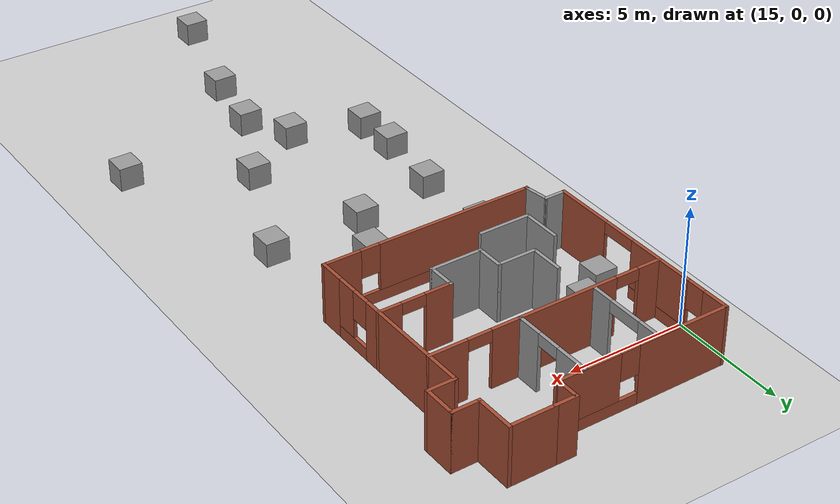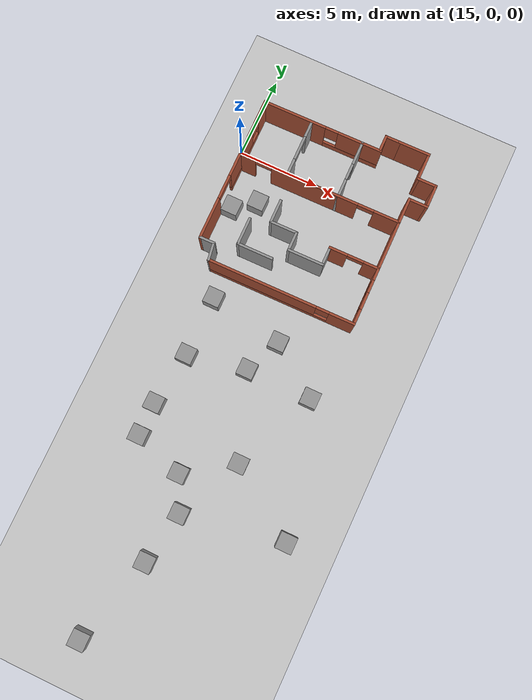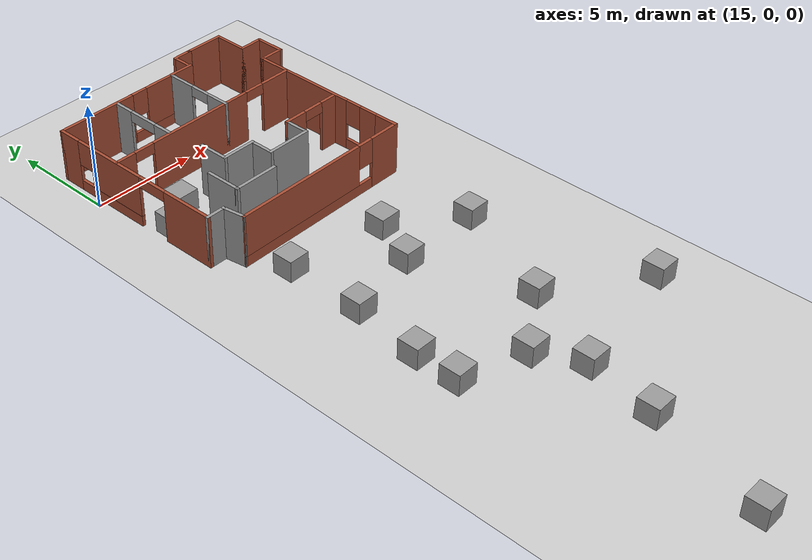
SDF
<sdf version="1.6">
 <world name="default">
  <model name="ground_plane">
   <static>1</static>
   <link name="link">
    <collision name="collision">
     <geometry><plane><normal>0 0 1</normal><size>100 100</size></plane></geometry>
     <surface><friction><ode><mu>100</mu><mu2>50</mu2></ode></friction></surface>
    </collision>
    <visual name="visual">
     <cast_shadows>0</cast_shadows>
     <geometry><plane><normal>0 0 1</normal><size>100 100</size></plane></geometry>
     <material>
      <script><uri>file://media/materials/scripts/gazebo.material</uri><name>Gazebo/Grey</name></script>
     </material>
    </visual>
   </link>
  </model>
  <model name="Multi_10home2">
   <pose>20.9623 -1.91647 0 0 0 -1.56057</pose>
   <link name="Wall_1">
    <pose>-0.030148 -5.55 0 0 -0 0</pose>
    <visual name="Wall_1_Visual_0">
     <pose>-3.9871 0 1.25 0 -0 0</pose>
     <geometry><box><size>1.1758 0.15 2.5</size></box></geometry>
     <material>
      <script><uri>file://media/materials/scripts/gazebo.material</uri><name>Gazebo/Bricks</name></script>
      <ambient>0.996078 0.47451 0.0196078 1</ambient>
     </material>
     <meta><layer>0</layer></meta>
    </visual>
    <collision name="Wall_1_Collision_0">
     <geometry><box><size>1.1758 0.15 2.5</size></box></geometry>
     <pose>-3.9871 0 1.25 0 -0 0</pose>
    </collision>
    <visual name="Wall_1_Visual_1">
     <pose>3.26904 0 1.25 0 -0 0</pose>
     <geometry><box><size>2.61193 0.15 2.5</size></box></geometry>
     <material>
      <script><uri>file://media/materials/scripts/gazebo.material</uri><name>Gazebo/Bricks</name></script>
      <ambient>0.996078 0.47451 0.0196078 1</ambient>
     </material>
     <meta><layer>0</layer></meta>
    </visual>
    <collision name="Wall_1_Collision_1">
     <geometry><box><size>2.61193 0.15 2.5</size></box></geometry>
     <pose>3.26904 0 1.25 0 -0 0</pose>
    </collision>
    <visual name="Wall_1_Visual_2">
     <pose>-1.46806 0 0.25 0 -0 0</pose>
     <geometry><box><size>3.86227 0.15 0.5</size></box></geometry>
     <material>
      <script><uri>file://media/materials/scripts/gazebo.material</uri><name>Gazebo/Bricks</name></script>
      <ambient>0.996078 0.47451 0.0196078 1</ambient>
     </material>
     <meta><layer>0</layer></meta>
    </visual>
    <collision name="Wall_1_Collision_2">
     <geometry><box><size>3.86227 0.15 0.5</size></box></geometry>
     <pose>-1.46806 0 0.25 0 -0 0</pose>
    </collision>
    <visual name="Wall_1_Visual_3">
     <pose>-1.06806 0 1.5 0 -0 0</pose>
     <geometry><box><size>3.06227 0.15 2</size></box></geometry>
     <material>
      <script><uri>file://media/materials/scripts/gazebo.material</uri><name>Gazebo/Bricks</name></script>
      <ambient>0.996078 0.47451 0.0196078 1</ambient>
     </material>
     <meta><layer>0</layer></meta>
    </visual>
    <collision name="Wall_1_Collision_3">
     <geometry><box><size>3.06227 0.15 2</size></box></geometry>
     <pose>-1.06806 0 1.5 0 -0 0</pose>
    </collision>
    <visual name="Wall_1_Visual_4">
     <pose>-2.9992 0 1.9 0 -0 0</pose>
     <geometry><box><size>0.8 0.15 1.2</size></box></geometry>
     <material>
      <script><uri>file://media/materials/scripts/gazebo.material</uri><name>Gazebo/Bricks</name></script>
      <ambient>0.996078 0.47451 0.0196078 1</ambient>
     </material>
     <meta><layer>0</layer></meta>
    </visual>
    <collision name="Wall_1_Collision_4">
     <geometry><box><size>0.8 0.15 1.2</size></box></geometry>
     <pose>-2.9992 0 1.9 0 -0 0</pose>
    </collision>
    <visual name="Wall_1_Visual_5">
     <pose>1.21307 0 2.25 0 -0 0</pose>
     <geometry><box><size>1.5 0.15 0.5</size></box></geometry>
     <material>
      <script><uri>file://media/materials/scripts/gazebo.material</uri><name>Gazebo/Bricks</name></script>
      <ambient>0.996078 0.47451 0.0196078 1</ambient>
     </material>
     <meta><layer>0</layer></meta>
    </visual>
    <collision name="Wall_1_Collision_5">
     <geometry><box><size>1.5 0.15 0.5</size></box></geometry>
     <pose>1.21307 0 2.25 0 -0 0</pose>
    </collision>
   </link>
   <link name="Wall_13">
    <collision name="Wall_13_Collision">
     <geometry><box><size>1.15 0.15 2.5</size></box></geometry>
     <pose>0 0 1.25 0 -0 0</pose>
    </collision>
    <visual name="Wall_13_Visual">
     <pose>0 0 1.25 0 -0 0</pose>
     <geometry><box><size>1.15 0.15 2.5</size></box></geometry>
     <material>
      <script><uri>file://media/materials/scripts/gazebo.material</uri><name>Gazebo/Bricks</name></script>
      <ambient>0.996078 0.47451 0.0196078 1</ambient>
     </material>
     <meta><layer>0</layer></meta>
    </visual>
    <pose>4.96985 4.45 0 0 -0 0</pose>
   </link>
   <link name="Wall_15">
    <pose>5.46985 -0.05 0 0 -0 -1.5708</pose>
    <visual name="Wall_15_Visual_0">
     <pose>-3.77551 0 1.25 0 -0 0</pose>
     <geometry><box><size>1.59899 0.15 2.5</size></box></geometry>
     <material>
      <script><uri>file://media/materials/scripts/gazebo.material</uri><name>Gazebo/Bricks</name></script>
      <ambient>0.996078 0.47451 0.0196078 1</ambient>
     </material>
     <meta><layer>0</layer></meta>
    </visual>
    <collision name="Wall_15_Collision_0">
     <geometry><box><size>1.59899 0.15 2.5</size></box></geometry>
     <pose>-3.77551 0 1.25 0 -0 0</pose>
    </collision>
    <visual name="Wall_15_Visual_1">
     <pose>0.799494 0 0.25 0 -0 0</pose>
     <geometry><box><size>7.55101 0.15 0.5</size></box></geometry>
     <material>
      <script><uri>file://media/materials/scripts/gazebo.material</uri><name>Gazebo/Bricks</name></script>
      <ambient>0.996078 0.47451 0.0196078 1</ambient>
     </material>
     <meta><layer>0</layer></meta>
    </visual>
    <collision name="Wall_15_Collision_1">
     <geometry><box><size>7.55101 0.15 0.5</size></box></geometry>
     <pose>0.799494 0 0.25 0 -0 0</pose>
    </collision>
    <visual name="Wall_15_Visual_2">
     <pose>1.19949 0 1.5 0 -0 0</pose>
     <geometry><box><size>6.75101 0.15 2</size></box></geometry>
     <material>
      <script><uri>file://media/materials/scripts/gazebo.material</uri><name>Gazebo/Bricks</name></script>
      <ambient>0.996078 0.47451 0.0196078 1</ambient>
     </material>
     <meta><layer>0</layer></meta>
    </visual>
    <collision name="Wall_15_Collision_2">
     <geometry><box><size>6.75101 0.15 2</size></box></geometry>
     <pose>1.19949 0 1.5 0 -0 0</pose>
    </collision>
    <visual name="Wall_15_Visual_3">
     <pose>-2.57601 0 1.9 0 -0 0</pose>
     <geometry><box><size>0.8 0.15 1.2</size></box></geometry>
     <material>
      <script><uri>file://media/materials/scripts/gazebo.material</uri><name>Gazebo/Bricks</name></script>
      <ambient>0.996078 0.47451 0.0196078 1</ambient>
     </material>
     <meta><layer>0</layer></meta>
    </visual>
    <collision name="Wall_15_Collision_3">
     <geometry><box><size>0.8 0.15 1.2</size></box></geometry>
     <pose>-2.57601 0 1.9 0 -0 0</pose>
    </collision>
   </link>
   <link name="Wall_17">
    <pose>-1.03015 -0.55 0 0 -0 -1.5708</pose>
    <visual name="Wall_17_Visual_0">
     <pose>-4.25111 0 1.25 0 -0 0</pose>
     <geometry><box><size>1.64778 0.15 2.5</size></box></geometry>
     <material>
      <script><uri>file://media/materials/scripts/gazebo.material</uri><name>Gazebo/Bricks</name></script>
      <ambient>1 0.764706 0.305882 1</ambient>
     </material>
     <meta><layer>0</layer></meta>
    </visual>
    <collision name="Wall_17_Collision_0">
     <geometry><box><size>1.64778 0.15 2.5</size></box></geometry>
     <pose>-4.25111 0 1.25 0 -0 0</pose>
    </collision>
    <visual name="Wall_17_Visual_1">
     <pose>0.285375 0 1.25 0 -0 0</pose>
     <geometry><box><size>5.42519 0.15 2.5</size></box></geometry>
     <material>
      <script><uri>file://media/materials/scripts/gazebo.material</uri><name>Gazebo/Bricks</name></script>
      <ambient>1 0.764706 0.305882 1</ambient>
     </material>
     <meta><layer>0</layer></meta>
    </visual>
    <collision name="Wall_17_Collision_1">
     <geometry><box><size>5.42519 0.15 2.5</size></box></geometry>
     <pose>0.285375 0 1.25 0 -0 0</pose>
    </collision>
    <visual name="Wall_17_Visual_2">
     <pose>4.53648 0 1.25 0 -0 0</pose>
     <geometry><box><size>1.07703 0.15 2.5</size></box></geometry>
     <material>
      <script><uri>file://media/materials/scripts/gazebo.material</uri><name>Gazebo/Bricks</name></script>
      <ambient>1 0.764706 0.305882 1</ambient>
     </material>
     <meta><layer>0</layer></meta>
    </visual>
    <collision name="Wall_17_Collision_2">
     <geometry><box><size>1.07703 0.15 2.5</size></box></geometry>
     <pose>4.53648 0 1.25 0 -0 0</pose>
    </collision>
    <visual name="Wall_17_Visual_3">
     <pose>-2.92722 0 2.25 0 -0 0</pose>
     <geometry><box><size>1 0.15 0.5</size></box></geometry>
     <material>
      <script><uri>file://media/materials/scripts/gazebo.material</uri><name>Gazebo/Bricks</name></script>
      <ambient>1 0.764706 0.305882 1</ambient>
     </material>
     <meta><layer>0</layer></meta>
    </visual>
    <collision name="Wall_17_Collision_3">
     <geometry><box><size>1 0.15 0.5</size></box></geometry>
     <pose>-2.92722 0 2.25 0 -0 0</pose>
    </collision>
    <visual name="Wall_17_Visual_4">
     <pose>3.49797 0 2.25 0 -0 0</pose>
     <geometry><box><size>1 0.15 0.5</size></box></geometry>
     <material>
      <script><uri>file://media/materials/scripts/gazebo.material</uri><name>Gazebo/Bricks</name></script>
      <ambient>1 0.764706 0.305882 1</ambient>
     </material>
     <meta><layer>0</layer></meta>
    </visual>
    <collision name="Wall_17_Collision_4">
     <geometry><box><size>1 0.15 0.5</size></box></geometry>
     <pose>3.49797 0 2.25 0 -0 0</pose>
    </collision>
   </link>
   <link name="Wall_21">
    <pose>1.96985 2.95 0 0 -0 -1.5708</pose>
    <visual name="Wall_21_Visual_0">
     <pose>-1.07884 0 1.25 0 -0 0</pose>
     <geometry><box><size>0.992321 0.15 2.5</size></box></geometry>
     <material>
      <script><uri>file://media/materials/scripts/gazebo.material</uri><name>Gazebo/Bricks</name></script>
      <ambient>1 0.764706 0.305882 1</ambient>
     </material>
     <meta><layer>0</layer></meta>
    </visual>
    <collision name="Wall_21_Collision_0">
     <geometry><box><size>0.992321 0.15 2.5</size></box></geometry>
     <pose>-1.07884 0 1.25 0 -0 0</pose>
    </collision>
    <visual name="Wall_21_Visual_1">
     <pose>0.99616 0 1.25 0 -0 0</pose>
     <geometry><box><size>1.15768 0.15 2.5</size></box></geometry>
     <material>
      <script><uri>file://media/materials/scripts/gazebo.material</uri><name>Gazebo/Bricks</name></script>
      <ambient>1 0.764706 0.305882 1</ambient>
     </material>
     <meta><layer>0</layer></meta>
    </visual>
    <collision name="Wall_21_Collision_1">
     <geometry><box><size>1.15768 0.15 2.5</size></box></geometry>
     <pose>0.99616 0 1.25 0 -0 0</pose>
    </collision>
    <visual name="Wall_21_Visual_2">
     <pose>-0.082679 0 2.25 0 -0 0</pose>
     <geometry><box><size>1 0.15 0.5</size></box></geometry>
     <material>
      <script><uri>file://media/materials/scripts/gazebo.material</uri><name>Gazebo/Bricks</name></script>
      <ambient>1 0.764706 0.305882 1</ambient>
     </material>
     <meta><layer>0</layer></meta>
    </visual>
    <collision name="Wall_21_Collision_2">
     <geometry><box><size>1 0.15 0.5</size></box></geometry>
     <pose>-0.082679 0 2.25 0 -0 0</pose>
    </collision>
   </link>
   <link name="Wall_23">
    <pose>-2.78015 0.65 0 0 -0 0</pose>
    <visual name="Wall_23_Visual_0">
     <pose>-1.08466 0 1.25 0 -0 0</pose>
     <geometry><box><size>1.48067 0.15 2.5</size></box></geometry>
     <material>
      <script><uri>file://media/materials/scripts/gazebo.material</uri><name>Gazebo/Grey</name></script>
      <ambient>1 1 1 1</ambient>
     </material>
     <meta><layer>0</layer></meta>
    </visual>
    <collision name="Wall_23_Collision_0">
     <geometry><box><size>1.48067 0.15 2.5</size></box></geometry>
     <pose>-1.08466 0 1.25 0 -0 0</pose>
    </collision>
    <visual name="Wall_23_Visual_1">
     <pose>1.24034 0 1.25 0 -0 0</pose>
     <geometry><box><size>1.16933 0.15 2.5</size></box></geometry>
     <material>
      <script><uri>file://media/materials/scripts/gazebo.material</uri><name>Gazebo/Grey</name></script>
      <ambient>1 1 1 1</ambient>
     </material>
     <meta><layer>0</layer></meta>
    </visual>
    <collision name="Wall_23_Collision_1">
     <geometry><box><size>1.16933 0.15 2.5</size></box></geometry>
     <pose>1.24034 0 1.25 0 -0 0</pose>
    </collision>
    <visual name="Wall_23_Visual_2">
     <pose>0.155673 0 2.25 0 -0 0</pose>
     <geometry><box><size>1 0.15 0.5</size></box></geometry>
     <material>
      <script><uri>file://media/materials/scripts/gazebo.material</uri><name>Gazebo/Grey</name></script>
      <ambient>1 1 1 1</ambient>
     </material>
     <meta><layer>0</layer></meta>
    </visual>
    <collision name="Wall_23_Collision_2">
     <geometry><box><size>1 0.15 0.5</size></box></geometry>
     <pose>0.155673 0 2.25 0 -0 0</pose>
    </collision>
   </link>
   <link name="Wall_25">
    <pose>-2.81697 -2.5468 0 0 -0 0</pose>
    <visual name="Wall_25_Visual_0">
     <pose>-1.22693 0 1.25 0 -0 0</pose>
     <geometry><box><size>1.04615 0.15 2.5</size></box></geometry>
     <material>
      <script><uri>file://media/materials/scripts/gazebo.material</uri><name>Gazebo/Grey</name></script>
      <ambient>1 1 1 1</ambient>
     </material>
     <meta><layer>0</layer></meta>
    </visual>
    <collision name="Wall_25_Collision_0">
     <geometry><box><size>1.04615 0.15 2.5</size></box></geometry>
     <pose>-1.22693 0 1.25 0 -0 0</pose>
    </collision>
    <visual name="Wall_25_Visual_1">
     <pose>1.27307 0 1.25 0 -0 0</pose>
     <geometry><box><size>0.953852 0.15 2.5</size></box></geometry>
     <material>
      <script><uri>file://media/materials/scripts/gazebo.material</uri><name>Gazebo/Grey</name></script>
      <ambient>1 1 1 1</ambient>
     </material>
     <meta><layer>0</layer></meta>
    </visual>
    <collision name="Wall_25_Collision_1">
     <geometry><box><size>0.953852 0.15 2.5</size></box></geometry>
     <pose>1.27307 0 1.25 0 -0 0</pose>
    </collision>
    <visual name="Wall_25_Visual_2">
     <pose>0.046148 0 2.25 0 -0 0</pose>
     <geometry><box><size>1.5 0.15 0.5</size></box></geometry>
     <material>
      <script><uri>file://media/materials/scripts/gazebo.material</uri><name>Gazebo/Grey</name></script>
      <ambient>1 1 1 1</ambient>
     </material>
     <meta><layer>0</layer></meta>
    </visual>
    <collision name="Wall_25_Collision_2">
     <geometry><box><size>1.5 0.15 0.5</size></box></geometry>
     <pose>0.046148 0 2.25 0 -0 0</pose>
    </collision>
   </link>
   <link name="Wall_27">
    <collision name="Wall_27_Collision">
     <geometry><box><size>1.25 0.15 2.5</size></box></geometry>
     <pose>0 0 1.25 0 -0 0</pose>
    </collision>
    <visual name="Wall_27_Visual">
     <pose>0 0 1.25 0 -0 0</pose>
     <geometry><box><size>1.25 0.15 2.5</size></box></geometry>
     <material>
      <script><uri>file://media/materials/scripts/gazebo.material</uri><name>Gazebo/Bricks</name></script>
      <ambient>0.996078 0.47451 0.0196078 1</ambient>
     </material>
     <meta><layer>0</layer></meta>
    </visual>
    <pose>-2.53015 5 0 0 -0 1.5708</pose>
   </link>
   <link name="Wall_28">
    <collision name="Wall_28_Collision">
     <geometry><box><size>1.5 0.15 2.5</size></box></geometry>
     <pose>0 0 1.25 0 -0 0</pose>
    </collision>
    <visual name="Wall_28_Visual">
     <pose>0 0 1.25 0 -0 0</pose>
     <geometry><box><size>1.5 0.15 2.5</size></box></geometry>
     <material>
      <script><uri>file://media/materials/scripts/gazebo.material</uri><name>Gazebo/Bricks</name></script>
      <ambient>0.996078 0.47451 0.0196078 1</ambient>
     </material>
     <meta><layer>0</layer></meta>
    </visual>
    <pose>-3.20515 5.55 0 0 -0 3.14159</pose>
   </link>
   <link name="Wall_29">
    <collision name="Wall_29_Collision">
     <geometry><box><size>1.25 0.15 2.5</size></box></geometry>
     <pose>0 0 1.25 0 -0 0</pose>
    </collision>
    <visual name="Wall_29_Visual">
     <pose>0 0 1.25 0 -0 0</pose>
     <geometry><box><size>1.25 0.15 2.5</size></box></geometry>
     <material>
      <script><uri>file://media/materials/scripts/gazebo.material</uri><name>Gazebo/Bricks</name></script>
      <ambient>0.996078 0.47451 0.0196078 1</ambient>
     </material>
     <meta><layer>0</layer></meta>
    </visual>
    <pose>-3.88015 5 0 0 -0 -1.5708</pose>
   </link>
   <link name="Wall_3">
    <pose>-4.53015 -1.875 0 0 -0 1.5708</pose>
    <visual name="Wall_3_Visual_0">
     <pose>-1.77393 0 1.25 0 -0 0</pose>
     <geometry><box><size>3.95214 0.15 2.5</size></box></geometry>
     <material>
      <script><uri>file://media/materials/scripts/gazebo.material</uri><name>Gazebo/Bricks</name></script>
      <ambient>0.996078 0.47451 0.0196078 1</ambient>
     </material>
     <meta><layer>0</layer></meta>
    </visual>
    <collision name="Wall_3_Collision_0">
     <geometry><box><size>3.95214 0.15 2.5</size></box></geometry>
     <pose>-1.77393 0 1.25 0 -0 0</pose>
    </collision>
    <visual name="Wall_3_Visual_1">
     <pose>1.97607 0 0.25 0 -0 0</pose>
     <geometry><box><size>3.54786 0.15 0.5</size></box></geometry>
     <material>
      <script><uri>file://media/materials/scripts/gazebo.material</uri><name>Gazebo/Bricks</name></script>
      <ambient>0.996078 0.47451 0.0196078 1</ambient>
     </material>
     <meta><layer>0</layer></meta>
    </visual>
    <collision name="Wall_3_Collision_1">
     <geometry><box><size>3.54786 0.15 0.5</size></box></geometry>
     <pose>1.97607 0 0.25 0 -0 0</pose>
    </collision>
    <visual name="Wall_3_Visual_2">
     <pose>2.37607 0 1.5 0 -0 0</pose>
     <geometry><box><size>2.74786 0.15 2</size></box></geometry>
     <material>
      <script><uri>file://media/materials/scripts/gazebo.material</uri><name>Gazebo/Bricks</name></script>
      <ambient>0.996078 0.47451 0.0196078 1</ambient>
     </material>
     <meta><layer>0</layer></meta>
    </visual>
    <collision name="Wall_3_Collision_2">
     <geometry><box><size>2.74786 0.15 2</size></box></geometry>
     <pose>2.37607 0 1.5 0 -0 0</pose>
    </collision>
    <visual name="Wall_3_Visual_3">
     <pose>0.602144 0 1.9 0 -0 0</pose>
     <geometry><box><size>0.8 0.15 1.2</size></box></geometry>
     <material>
      <script><uri>file://media/materials/scripts/gazebo.material</uri><name>Gazebo/Bricks</name></script>
      <ambient>0.996078 0.47451 0.0196078 1</ambient>
     </material>
     <meta><layer>0</layer></meta>
    </visual>
    <collision name="Wall_3_Collision_3">
     <geometry><box><size>0.8 0.15 1.2</size></box></geometry>
     <pose>0.602144 0 1.9 0 -0 0</pose>
    </collision>
   </link>
   <link name="Wall_30">
    <collision name="Wall_30_Collision">
     <geometry><box><size>1.75 0.15 2.5</size></box></geometry>
     <pose>0 0 1.25 0 -0 0</pose>
    </collision>
    <visual name="Wall_30_Visual">
     <pose>0 0 1.25 0 -0 0</pose>
     <geometry><box><size>1.75 0.15 2.5</size></box></geometry>
     <material>
      <script><uri>file://media/materials/scripts/gazebo.material</uri><name>Gazebo/Bricks</name></script>
      <ambient>0.996078 0.47451 0.0196078 1</ambient>
     </material>
     <meta><layer>0</layer></meta>
    </visual>
    <pose>-4.68015 4.45 0 0 -0 3.14159</pose>
   </link>
   <link name="Wall_31">
    <collision name="Wall_31_Collision">
     <geometry><box><size>2 0.15 2.5</size></box></geometry>
     <pose>0 0 1.25 0 -0 0</pose>
    </collision>
    <visual name="Wall_31_Visual">
     <pose>0 0 1.25 0 -0 0</pose>
     <geometry><box><size>2 0.15 2.5</size></box></geometry>
     <material>
      <script><uri>file://media/materials/scripts/gazebo.material</uri><name>Gazebo/Bricks</name></script>
      <ambient>0.996078 0.47451 0.0196078 1</ambient>
     </material>
     <meta><layer>0</layer></meta>
    </visual>
    <pose>-5.48015 3.525 0 0 -0 -1.5708</pose>
   </link>
   <link name="Wall_32">
    <collision name="Wall_32_Collision">
     <geometry><box><size>1 0.15 2.5</size></box></geometry>
     <pose>0 0 1.25 0 -0 0</pose>
    </collision>
    <visual name="Wall_32_Visual">
     <pose>0 0 1.25 0 -0 0</pose>
     <geometry><box><size>1 0.15 2.5</size></box></geometry>
     <material>
      <script><uri>file://media/materials/scripts/gazebo.material</uri><name>Gazebo/Bricks</name></script>
      <ambient>0.996078 0.47451 0.0196078 1</ambient>
     </material>
     <meta><layer>0</layer></meta>
    </visual>
    <pose>-5.48015 2.175 0 0 -0 -1.5708</pose>
   </link>
   <link name="Wall_33">
    <collision name="Wall_33_Collision">
     <geometry><box><size>1 0.15 2.5</size></box></geometry>
     <pose>0 0 1.25 0 -0 0</pose>
    </collision>
    <visual name="Wall_33_Visual">
     <pose>0 0 1.25 0 -0 0</pose>
     <geometry><box><size>1 0.15 2.5</size></box></geometry>
     <material>
      <script><uri>file://media/materials/scripts/gazebo.material</uri><name>Gazebo/Bricks</name></script>
      <ambient>0.996078 0.47451 0.0196078 1</ambient>
     </material>
     <meta><layer>0</layer></meta>
    </visual>
    <pose>-5.05515 1.75 0 0 -0 0</pose>
   </link>
   <link name="Wall_35">
    <collision name="Wall_35_Collision">
     <geometry><box><size>1.25 0.15 2.5</size></box></geometry>
     <pose>0 0 1.25 0 -0 0</pose>
    </collision>
    <visual name="Wall_35_Visual">
     <pose>0 0 1.25 0 -0 0</pose>
     <geometry><box><size>1.25 0.15 2.5</size></box></geometry>
     <material>
      <script><uri>file://media/materials/scripts/gazebo.material</uri><name>Gazebo/Grey</name></script>
      <ambient>1 1 1 1</ambient>
     </material>
     <meta><layer>0</layer></meta>
    </visual>
    <pose>2.51985 1.45 0 0 -0 0</pose>
   </link>
   <link name="Wall_36">
    <collision name="Wall_36_Collision">
     <geometry><box><size>2.25 0.15 2.5</size></box></geometry>
     <pose>0 0 1.25 0 -0 0</pose>
    </collision>
    <visual name="Wall_36_Visual">
     <pose>0 0 1.25 0 -0 0</pose>
     <geometry><box><size>2.25 0.15 2.5</size></box></geometry>
     <material>
      <script><uri>file://media/materials/scripts/gazebo.material</uri><name>Gazebo/Grey</name></script>
      <ambient>1 1 1 1</ambient>
     </material>
     <meta><layer>0</layer></meta>
    </visual>
    <pose>3.06985 0.4 0 0 -0 -1.5708</pose>
   </link>
   <link name="Wall_37">
    <collision name="Wall_37_Collision">
     <geometry><box><size>1.25 0.15 2.5</size></box></geometry>
     <pose>0 0 1.25 0 -0 0</pose>
    </collision>
    <visual name="Wall_37_Visual">
     <pose>0 0 1.25 0 -0 0</pose>
     <geometry><box><size>1.25 0.15 2.5</size></box></geometry>
     <material>
      <script><uri>file://media/materials/scripts/gazebo.material</uri><name>Gazebo/Grey</name></script>
      <ambient>1 1 1 1</ambient>
     </material>
     <meta><layer>0</layer></meta>
    </visual>
    <pose>2.51985 -0.65 0 0 -0 3.14159</pose>
   </link>
   <link name="Wall_38">
    <collision name="Wall_38_Collision">
     <geometry><box><size>1.75 0.15 2.5</size></box></geometry>
     <pose>0 0 1.25 0 -0 0</pose>
    </collision>
    <visual name="Wall_38_Visual">
     <pose>0 0 1.25 0 -0 0</pose>
     <geometry><box><size>1.75 0.15 2.5</size></box></geometry>
     <material>
      <script><uri>file://media/materials/scripts/gazebo.material</uri><name>Gazebo/Grey</name></script>
      <ambient>1 1 1 1</ambient>
     </material>
     <meta><layer>0</layer></meta>
    </visual>
    <pose>1.96985 -1.45 0 0 -0 -1.5708</pose>
   </link>
   <link name="Wall_39">
    <collision name="Wall_39_Collision">
     <geometry><box><size>1.5 0.15 2.5</size></box></geometry>
     <pose>0 0 1.25 0 -0 0</pose>
    </collision>
    <visual name="Wall_39_Visual">
     <pose>0 0 1.25 0 -0 0</pose>
     <geometry><box><size>1.5 0.15 2.5</size></box></geometry>
     <material>
      <script><uri>file://media/materials/scripts/gazebo.material</uri><name>Gazebo/Grey</name></script>
      <ambient>1 1 1 1</ambient>
     </material>
     <meta><layer>0</layer></meta>
    </visual>
    <pose>1.29485 -2.25 0 0 -0 3.14159</pose>
   </link>
   <link name="Wall_41">
    <collision name="Wall_41_Collision">
     <geometry><box><size>2.25 0.15 2.5</size></box></geometry>
     <pose>0 0 1.25 0 -0 0</pose>
    </collision>
    <visual name="Wall_41_Visual">
     <pose>0 0 1.25 0 -0 0</pose>
     <geometry><box><size>2.25 0.15 2.5</size></box></geometry>
     <material>
      <script><uri>file://media/materials/scripts/gazebo.material</uri><name>Gazebo/Grey</name></script>
      <ambient>1 1 1 1</ambient>
     </material>
     <meta><layer>0</layer></meta>
    </visual>
    <pose>3.92844 -2.37544 0 0 -0 -1.5708</pose>
   </link>
   <link name="Wall_42">
    <collision name="Wall_42_Collision">
     <geometry><box><size>1.75 0.15 2.5</size></box></geometry>
     <pose>0 0 1.25 0 -0 0</pose>
    </collision>
    <visual name="Wall_42_Visual">
     <pose>0 0 1.25 0 -0 0</pose>
     <geometry><box><size>1.75 0.15 2.5</size></box></geometry>
     <material>
      <script><uri>file://media/materials/scripts/gazebo.material</uri><name>Gazebo/Grey</name></script>
      <ambient>1 1 1 1</ambient>
     </material>
     <meta><layer>0</layer></meta>
    </visual>
    <pose>3.12844 -3.42544 0 0 -0 3.14159</pose>
   </link>
   <link name="Wall_45">
    <collision name="Wall_45_Collision">
     <geometry><box><size>1 0.15 2.5</size></box></geometry>
     <pose>0 0 1.25 0 -0 0</pose>
    </collision>
    <visual name="Wall_45_Visual">
     <pose>0 0 1.25 0 -0 0</pose>
     <geometry><box><size>1 0.15 2.5</size></box></geometry>
     <material>
      <script><uri>file://media/materials/scripts/gazebo.material</uri><name>Gazebo/Grey</name></script>
      <ambient>1 1 1 1</ambient>
     </material>
     <meta><layer>0</layer></meta>
    </visual>
    <pose>4.46985 -5.125 0 0 -0 1.5708</pose>
   </link>
   <link name="Wall_47">
    <collision name="Wall_47_Collision">
     <geometry><box><size>1.16119 0.15 2.5</size></box></geometry>
     <pose>0 0 1.25 0 -0 0</pose>
    </collision>
    <visual name="Wall_47_Visual">
     <pose>0 0 1.25 0 -0 0</pose>
     <geometry><box><size>1.16119 0.15 2.5</size></box></geometry>
     <material>
      <script><uri>file://media/materials/scripts/gazebo.material</uri><name>Gazebo/Grey</name></script>
      <ambient>1 1 1 1</ambient>
     </material>
     <meta><layer>0</layer></meta>
    </visual>
    <pose>4.96985 -4.625 0 0 -0 -2.9927</pose>
   </link>
   <link name="Wall_9">
    <pose>0.969852 4.45 0 0 -0 0</pose>
    <visual name="Wall_9_Visual_0">
     <pose>-0.925142 0 1.25 0 -0 0</pose>
     <geometry><box><size>5.29972 0.15 2.5</size></box></geometry>
     <material>
      <script><uri>file://media/materials/scripts/gazebo.material</uri><name>Gazebo/Bricks</name></script>
      <ambient>0.996078 0.47451 0.0196078 1</ambient>
     </material>
     <meta><layer>0</layer></meta>
    </visual>
    <collision name="Wall_9_Collision_0">
     <geometry><box><size>5.29972 0.15 2.5</size></box></geometry>
     <pose>-0.925142 0 1.25 0 -0 0</pose>
    </collision>
    <visual name="Wall_9_Visual_1">
     <pose>2.64986 0 0.25 0 -0 0</pose>
     <geometry><box><size>1.85028 0.15 0.5</size></box></geometry>
     <material>
      <script><uri>file://media/materials/scripts/gazebo.material</uri><name>Gazebo/Bricks</name></script>
      <ambient>0.996078 0.47451 0.0196078 1</ambient>
     </material>
     <meta><layer>0</layer></meta>
    </visual>
    <collision name="Wall_9_Collision_1">
     <geometry><box><size>1.85028 0.15 0.5</size></box></geometry>
     <pose>2.64986 0 0.25 0 -0 0</pose>
    </collision>
    <visual name="Wall_9_Visual_2">
     <pose>3.04986 0 1.5 0 -0 0</pose>
     <geometry><box><size>1.05028 0.15 2</size></box></geometry>
     <material>
      <script><uri>file://media/materials/scripts/gazebo.material</uri><name>Gazebo/Bricks</name></script>
      <ambient>0.996078 0.47451 0.0196078 1</ambient>
     </material>
     <meta><layer>0</layer></meta>
    </visual>
    <collision name="Wall_9_Collision_2">
     <geometry><box><size>1.05028 0.15 2</size></box></geometry>
     <pose>3.04986 0 1.5 0 -0 0</pose>
    </collision>
    <visual name="Wall_9_Visual_3">
     <pose>2.12472 0 1.9 0 -0 0</pose>
     <geometry><box><size>0.8 0.15 1.2</size></box></geometry>
     <material>
      <script><uri>file://media/materials/scripts/gazebo.material</uri><name>Gazebo/Bricks</name></script>
      <ambient>0.996078 0.47451 0.0196078 1</ambient>
     </material>
     <meta><layer>0</layer></meta>
    </visual>
    <collision name="Wall_9_Collision_3">
     <geometry><box><size>0.8 0.15 1.2</size></box></geometry>
     <pose>2.12472 0 1.9 0 -0 0</pose>
    </collision>
   </link>
   <static>1</static>
  </model>
  <model name="unit_box_17">
   <pose>21 -12 0.499995 1e-05 -0 -5e-06</pose>
   <link name="link">
    <inertial>
     <mass>1</mass>
     <inertia>
      <ixx>0.166667</ixx>
      <ixy>0</ixy>
      <ixz>0</ixz>
      <iyy>0.166667</iyy>
      <iyz>0</iyz>
      <izz>0.166667</izz>
     </inertia>
    </inertial>
    <collision name="collision"><geometry><box><size>1 1 1</size></box></geometry></collision>
    <visual name="visual">
     <geometry><box><size>1 1 1</size></box></geometry>
     <material>
      <script><name>Gazebo/Grey</name><uri>file://media/materials/scripts/gazebo.material</uri></script>
     </material>
    </visual>
   </link>
  </model>
  <model name="unit_box_26">
   <pose>17.3124 -2.63047 0.499995 0 1e-05 5e-06</pose>
   <link name="link">
    <inertial>
     <mass>1</mass>
     <inertia>
      <ixx>0.166667</ixx>
      <ixy>0</ixy>
      <ixz>0</ixz>
      <iyy>0.166667</iyy>
      <iyz>0</iyz>
      <izz>0.166667</izz>
     </inertia>
    </inertial>
    <collision name="collision"><geometry><box><size>1 1 1</size></box></geometry></collision>
    <visual name="visual">
     <geometry><box><size>1 1 1</size></box></geometry>
     <material>
      <script><name>Gazebo/Grey</name><uri>file://media/materials/scripts/gazebo.material</uri></script>
     </material>
    </visual>
   </link>
  </model>
  <model name="unit_box_28_clone_25">
   <pose>27.1229 -19.9012 0.5005 -0 -0 -0</pose>
   <link name="link">
    <inertial>
     <mass>1</mass>
     <inertia>
      <ixx>0.166667</ixx>
      <ixy>0</ixy>
      <ixz>0</ixz>
      <iyy>0.166667</iyy>
      <iyz>0</iyz>
      <izz>0.166667</izz>
     </inertia>
    </inertial>
    <collision name="collision"><geometry><box><size>1 1 1</size></box></geometry></collision>
    <visual name="visual">
     <geometry><box><size>1 1 1</size></box></geometry>
     <material>
      <script><name>Gazebo/Grey</name><uri>file://media/materials/scripts/gazebo.material</uri></script>
     </material>
    </visual>
   </link>
  </model>
  <model name="unit_box_28_clone_26">
   <pose>22.853 -17.0831 0.5005 -0 -0 -0</pose>
   <link name="link">
    <inertial>
     <mass>1</mass>
     <inertia>
      <ixx>0.166667</ixx>
      <ixy>0</ixy>
      <ixz>0</ixz>
      <iyy>0.166667</iyy>
      <iyz>0</iyz>
      <izz>0.166667</izz>
     </inertia>
    </inertial>
    <collision name="collision"><geometry><box><size>1 1 1</size></box></geometry></collision>
    <visual name="visual">
     <geometry><box><size>1 1 1</size></box></geometry>
     <material>
      <script><name>Gazebo/Grey</name><uri>file://media/materials/scripts/gazebo.material</uri></script>
     </material>
    </visual>
   </link>
  </model>
  <model name="unit_box_28_clone_27">
   <pose>25 -12 0.499995 0 1e-05 0</pose>
   <link name="link">
    <inertial>
     <mass>1</mass>
     <inertia>
      <ixx>0.166667</ixx>
      <ixy>0</ixy>
      <ixz>0</ixz>
      <iyy>0.166667</iyy>
      <iyz>0</iyz>
      <izz>0.166667</izz>
     </inertia>
    </inertial>
    <collision name="collision"><geometry><box><size>1 1 1</size></box></geometry></collision>
    <visual name="visual">
     <geometry><box><size>1 1 1</size></box></geometry>
     <material>
      <script><name>Gazebo/Grey</name><uri>file://media/materials/scripts/gazebo.material</uri></script>
     </material>
    </visual>
   </link>
  </model>
  <model name="unit_box_28_clone_29">
   <pose>21.9669 -9.79696 0.499995 0 1e-05 0</pose>
   <link name="link">
    <inertial>
     <mass>1</mass>
     <inertia>
      <ixx>0.166667</ixx>
      <ixy>0</ixy>
      <ixz>0</ixz>
      <iyy>0.166667</iyy>
      <iyz>0</iyz>
      <izz>0.166667</izz>
     </inertia>
    </inertial>
    <collision name="collision"><geometry><box><size>1 1 1</size></box></geometry></collision>
    <visual name="visual">
     <geometry><box><size>1 1 1</size></box></geometry>
     <material>
      <script><name>Gazebo/Grey</name><uri>file://media/materials/scripts/gazebo.material</uri></script>
     </material>
    </visual>
   </link>
  </model>
  <model name="unit_box_28_clone_30">
   <pose>17.4448 -9 0.499995 0 1e-05 0</pose>
   <link name="link">
    <inertial>
     <mass>1</mass>
     <inertia>
      <ixx>0.166667</ixx>
      <ixy>0</ixy>
      <ixz>0</ixz>
      <iyy>0.166667</iyy>
      <iyz>0</iyz>
      <izz>0.166667</izz>
     </inertia>
    </inertial>
    <collision name="collision"><geometry><box><size>1 1 1</size></box></geometry></collision>
    <visual name="visual">
     <geometry><box><size>1 1 1</size></box></geometry>
     <material>
      <script><name>Gazebo/Grey</name><uri>file://media/materials/scripts/gazebo.material</uri></script>
     </material>
    </visual>
   </link>
  </model>
  <model name="unit_box_28_clone_31">
   <pose>17.4421 -12.6945 0.499995 0 1e-05 0</pose>
   <link name="link">
    <inertial>
     <mass>1</mass>
     <inertia>
      <ixx>0.166667</ixx>
      <ixy>0</ixy>
      <ixz>0</ixz>
      <iyy>0.166667</iyy>
      <iyz>0</iyz>
      <izz>0.166667</izz>
     </inertia>
    </inertial>
    <collision name="collision"><geometry><box><size>1 1 1</size></box></geometry></collision>
    <visual name="visual">
     <geometry><box><size>1 1 1</size></box></geometry>
     <material>
      <script><name>Gazebo/Grey</name><uri>file://media/materials/scripts/gazebo.material</uri></script>
     </material>
    </visual>
   </link>
  </model>
  <model name="unit_box_28_clone_32">
   <pose>17 -16 0.5005 -0 -0 -0</pose>
   <link name="link">
    <inertial>
     <mass>1</mass>
     <inertia>
      <ixx>0.166667</ixx>
      <ixy>0</ixy>
      <ixz>0</ixz>
      <iyy>0.166667</iyy>
      <iyz>0</iyz>
      <izz>0.166667</izz>
     </inertia>
    </inertial>
    <collision name="collision"><geometry><box><size>1 1 1</size></box></geometry></collision>
    <visual name="visual">
     <geometry><box><size>1 1 1</size></box></geometry>
     <material>
      <script><name>Gazebo/Grey</name><uri>file://media/materials/scripts/gazebo.material</uri></script>
     </material>
    </visual>
   </link>
  </model>
  <model name="unit_box_28_clone_33">
   <pose>17 -18 0.5005 -0 -0 -0</pose>
   <link name="link">
    <inertial>
     <mass>1</mass>
     <inertia>
      <ixx>0.166667</ixx>
      <ixy>0</ixy>
      <ixz>0</ixz>
      <iyy>0.166667</iyy>
      <iyz>0</iyz>
      <izz>0.166667</izz>
     </inertia>
    </inertial>
    <collision name="collision"><geometry><box><size>1 1 1</size></box></geometry></collision>
    <visual name="visual">
     <geometry><box><size>1 1 1</size></box></geometry>
     <material>
      <script><name>Gazebo/Grey</name><uri>file://media/materials/scripts/gazebo.material</uri></script>
     </material>
    </visual>
   </link>
  </model>
  <model name="unit_box_28_clone_34">
   <pose>20 -19 0.5005 -0 -0 -0</pose>
   <link name="link">
    <inertial>
     <mass>1</mass>
     <inertia>
      <ixx>0.166667</ixx>
      <ixy>0</ixy>
      <ixz>0</ixz>
      <iyy>0.166667</iyy>
      <iyz>0</iyz>
      <izz>0.166667</izz>
     </inertia>
    </inertial>
    <collision name="collision"><geometry><box><size>1 1 1</size></box></geometry></collision>
    <visual name="visual">
     <geometry><box><size>1 1 1</size></box></geometry>
     <material>
      <script><name>Gazebo/Grey</name><uri>file://media/materials/scripts/gazebo.material</uri></script>
     </material>
    </visual>
   </link>
  </model>
  <model name="unit_box_28_clone_35">
   <pose>21 -21 0.5005 -0 -0 -0</pose>
   <link name="link">
    <inertial>
     <mass>1</mass>
     <inertia>
      <ixx>0.166667</ixx>
      <ixy>0</ixy>
      <ixz>0</ixz>
      <iyy>0.166667</iyy>
      <iyz>0</iyz>
      <izz>0.166667</izz>
     </inertia>
    </inertial>
    <collision name="collision"><geometry><box><size>1 1 1</size></box></geometry></collision>
    <visual name="visual">
     <geometry><box><size>1 1 1</size></box></geometry>
     <material>
      <script><name>Gazebo/Grey</name><uri>file://media/materials/scripts/gazebo.material</uri></script>
     </material>
    </visual>
   </link>
  </model>
  <model name="unit_box_28_clone_36">
   <pose>20.4465 -24.1778 0.500262 6e-06 0.000538 1.2e-05</pose>
   <link name="link">
    <inertial>
     <mass>1</mass>
     <inertia>
      <ixx>0.166667</ixx>
      <ixy>0</ixy>
      <ixz>0</ixz>
      <iyy>0.166667</iyy>
      <iyz>0</iyz>
      <izz>0.166667</izz>
     </inertia>
    </inertial>
    <collision name="collision"><geometry><box><size>1 1 1</size></box></geometry></collision>
    <visual name="visual">
     <geometry><box><size>1 1 1</size></box></geometry>
     <material>
      <script><name>Gazebo/Grey</name><uri>file://media/materials/scripts/gazebo.material</uri></script>
     </material>
    </visual>
   </link>
  </model>
  <model name="unit_box_28_clone_37">
   <pose>19 -29.4043 0.5005 -0 -0 -0</pose>
   <link name="link">
    <inertial>
     <mass>1</mass>
     <inertia>
      <ixx>0.166667</ixx>
      <ixy>0</ixy>
      <ixz>0</ixz>
      <iyy>0.166667</iyy>
      <iyz>0</iyz>
      <izz>0.166667</izz>
     </inertia>
    </inertial>
    <collision name="collision"><geometry><box><size>1 1 1</size></box></geometry></collision>
    <visual name="visual">
     <geometry><box><size>1 1 1</size></box></geometry>
     <material>
      <script><name>Gazebo/Grey</name><uri>file://media/materials/scripts/gazebo.material</uri></script>
     </material>
    </visual>
   </link>
  </model>
  <model name="unit_box_28_clone_50_clone_11">
   <pose>16.0268 -3.5371 0.5 0 -0 0</pose>
   <link name="link">
    <inertial>
     <mass>1</mass>
     <inertia>
      <ixx>0.166667</ixx>
      <ixy>0</ixy>
      <ixz>0</ixz>
      <iyy>0.166667</iyy>
      <iyz>0</iyz>
      <izz>0.166667</izz>
     </inertia>
    </inertial>
    <collision name="collision"><geometry><box><size>1 1 1</size></box></geometry></collision>
    <visual name="visual">
     <geometry><box><size>1 1 1</size></box></geometry>
     <material>
      <script><name>Gazebo/Grey</name><uri>file://media/materials/scripts/gazebo.material</uri></script>
     </material>
    </visual>
   </link>
  </model>
 </world>
</sdf>
